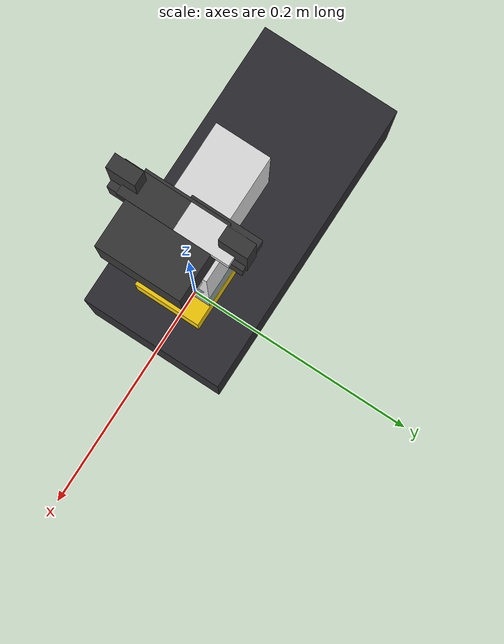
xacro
<?xml version="1.0"?>
<!-- Same kinematics and collision geometry as dofbot.urdf.xacro; low-poly visual. -->
<robot xmlns:xacro="http://www.ros.org/wiki/xacro" name="dofbot">
  <xacro:arg name="initial_positions_file" default="initial_positions.yaml"/>
  <xacro:include filename="dofbot_lite_model.urdf.xacro"/>
  <xacro:include filename="dofbot.ros2_control.xacro"/>
  <xacro:dofbot_ros2_control name="FakeSystem" initial_positions_file="$(arg initial_positions_file)"/>
</robot>

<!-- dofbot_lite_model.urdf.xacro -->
<robot xmlns:xacro="http://www.ros.org/wiki/xacro" name="dofbot">
  <xacro:macro name="lite_box_link" params="name xyz size rgba">
    <link name="${name}">
      <visual><origin xyz="${xyz}" rpy="0 0 0"/><geometry><box size="${size}"/></geometry><material name="${name}_lite"><color rgba="${rgba}"/></material></visual>
      <collision><origin xyz="${xyz}" rpy="0 0 0"/><geometry><box size="${size}"/></geometry></collision>
    </link>
  </xacro:macro>
  <xacro:macro name="lite_cylinder_link" params="name xyz radius length rgba">
    <link name="${name}">
      <visual><origin xyz="${xyz}" rpy="0 0 0"/><geometry><cylinder radius="${radius}" length="${length}"/></geometry><material name="${name}_lite"><color rgba="${rgba}"/></material></visual>
      <collision><origin xyz="${xyz}" rpy="0 0 0"/><geometry><cylinder radius="${radius}" length="${length}"/></geometry></collision>
    </link>
  </xacro:macro>

  <!-- Dimensions use the existing collision proxies, so visual and collision
       remain easy to compare while rendering only 14 primitives. -->
  <xacro:lite_box_link name="base_link" xyz="-0.0665 0.001 0.0445" size="0.25 0.12 0.115" rgba="0.18 0.18 0.20 1"/>
  <xacro:lite_box_link name="arm1_Link" xyz="0 -0.002 0.016" size="0.06 0.055 0.06" rgba="1 0.83 0.03 1"/>
  <xacro:lite_box_link name="arm2_Link" xyz="-0.004 0 0.04" size="0.035 0.05 0.11" rgba="0.59 0.67 0.68 1"/>
  <xacro:lite_box_link name="arm3_Link" xyz="-0.004 0 0.04" size="0.035 0.05 0.11" rgba="0.92 0.92 0.92 1"/>
  <xacro:lite_box_link name="arm4_Link" xyz="-0.017 0.001 0.032" size="0.10 0.04 0.095" rgba="0.92 0.92 0.92 1"/>
  <xacro:lite_box_link name="arm5_Link" xyz="0.016 -0.003 0.024" size="0.055 0.06 0.055" rgba="0.22 0.22 0.22 1"/>
  <xacro:lite_box_link name="Rlink1_Link" xyz="0.01 0.001 -0.005" size="0.05 0.025 0.02" rgba="0.22 0.22 0.22 1"/>
  <xacro:lite_box_link name="Rlink2_Link" xyz="0.024 0.004 -0.005" size="0.06 0.02 0.01" rgba="0.22 0.22 0.22 1"/>
  <xacro:lite_box_link name="Llink1_Link" xyz="0.01 -0.001 -0.0025" size="0.05 0.025 0.022" rgba="0.22 0.22 0.22 1"/>
  <xacro:lite_box_link name="Llink2_Link" xyz="0.024 -0.004 -0.005" size="0.06 0.02 0.01" rgba="0.22 0.22 0.22 1"/>
  <xacro:lite_box_link name="Rlink3_Link" xyz="0.015 0 -0.006" size="0.04 0.01 0.02" rgba="0.22 0.22 0.22 1"/>
  <xacro:lite_box_link name="Llink3_Link" xyz="0.015 0 -0.006" size="0.04 0.01 0.02" rgba="0.92 0.92 0.92 1"/>
  <xacro:lite_box_link name="Camera_Link" xyz="0 0 -0.015" size="0.03 0.035 0.035" rgba="0.53 0.53 0.53 1"/>
  <xacro:lite_box_link name="Gripping_point_Link" xyz="-0.07 0 0" size="0.01 0.025 0.025" rgba="0.95 0.25 0.05 1"/>

  <joint name="arm1_Joint" type="revolute"><origin xyz="0 0 0.0925" rpy="0 0 0"/><parent link="base_link"/><child link="arm1_Link"/><axis xyz="0 0 1"/><limit lower="-1.57" upper="1.57" effort="10" velocity="1000"/></joint>
  <joint name="arm2_Joint" type="revolute"><origin xyz="0 0.00005 0.033" rpy="0 0 0"/><parent link="arm1_Link"/><child link="arm2_Link"/><axis xyz="0 1 0"/><limit lower="-1.57" upper="1.57" effort="10" velocity="1000"/></joint>
  <joint name="arm3_Joint" type="revolute"><origin xyz="0 0.00055 0.08285" rpy="0 0 0"/><parent link="arm2_Link"/><child link="arm3_Link"/><axis xyz="0 1 0"/><limit lower="-1.57" upper="1.57" effort="10" velocity="1000"/></joint>
  <joint name="arm4_Joint" type="revolute"><origin xyz="0 0.00005 0.08285" rpy="0 0 0"/><parent link="arm3_Link"/><child link="arm4_Link"/><axis xyz="0 1 0"/><limit lower="-1.57" upper="1.57" effort="10" velocity="1000"/></joint>
  <joint name="arm5_Joint" type="revolute"><origin xyz="-0.00215 -0.000045 0.078149" rpy="0 0 0"/><parent link="arm4_Link"/><child link="arm5_Link"/><axis xyz="0 0 1"/><limit lower="-1.57" upper="1.57" effort="10" velocity="1000"/></joint>
  <joint name="Rlink1_Joint" type="revolute"><origin xyz="-0.00575 -0.012625 0.029275" rpy="1.5708 0.011933 -1.5708"/><parent link="arm5_Link"/><child link="Rlink1_Link"/><axis xyz="0 0 1"/><limit lower="0" upper="1.57" effort="10" velocity="1000"/></joint>
  <joint name="Rlink2_Joint" type="continuous"><origin xyz="0.03 0 0" rpy="0 0 1.5827"/><parent link="Rlink1_Link"/><child link="Rlink2_Link"/><axis xyz="0 0 1"/><mimic joint="Rlink1_Joint" multiplier="-1" offset="0"/></joint>
  <joint name="Llink1_Joint" type="revolute"><origin xyz="-0.00575 0.012375 0.029275" rpy="-1.5708 0.012847 1.5708"/><parent link="arm5_Link"/><child link="Llink1_Link"/><axis xyz="0 0 1"/><limit lower="-1.57" upper="1.57" effort="10" velocity="1000"/><mimic joint="Rlink1_Joint" multiplier="-1" offset="0"/></joint>
  <joint name="Llink2_Joint" type="continuous"><origin xyz="0.03 0 0" rpy="0 0 -1.5836"/><parent link="Llink1_Link"/><child link="Llink2_Link"/><axis xyz="0 0 1"/><mimic joint="Rlink1_Joint" multiplier="1" offset="0"/></joint>
  <joint name="Rlink3_Joint" type="continuous"><origin xyz="-0.0055 -0.0045 0.047275" rpy="1.5708 0.0027284 -1.5708"/><parent link="arm5_Link"/><child link="Rlink3_Link"/><axis xyz="0 0 1"/><mimic joint="Rlink1_Joint" multiplier="1" offset="0"/></joint>
  <joint name="Llink3_Joint" type="continuous"><origin xyz="-0.0055 0.0045 0.047275" rpy="-1.5708 0 1.5708"/><parent link="arm5_Link"/><child link="Llink3_Link"/><axis xyz="0 0 1"/><mimic joint="Rlink1_Joint" multiplier="-1" offset="0"/></joint>
  <joint name="Camera_Joint" type="fixed"><origin xyz="-0.0481 -0.00005 0.0707" rpy="0 0 0"/><parent link="arm4_Link"/><child link="Camera_Link"/></joint>
  <joint name="Gripping_Joint" type="fixed"><origin xyz="-0.00265 0.000097552 0.068091" rpy="3.1416 -1.5708 0"/><parent link="arm5_Link"/><child link="Gripping_point_Link"/></joint>
</robot>
